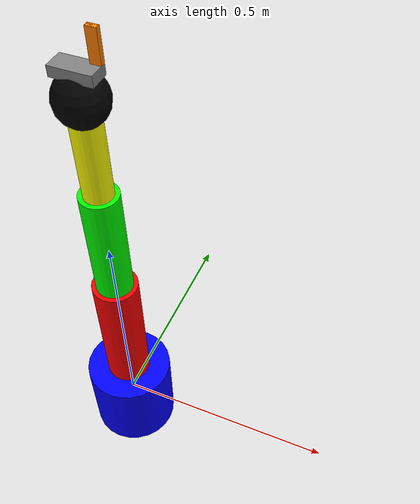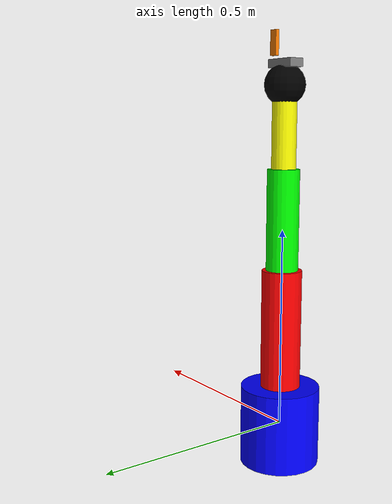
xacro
<?xml version="1.0"?>
<robot xmlns:xacro="http://www.ros.org/wiki/xacro" name="gesture_arm">

  <!-- Materials -->
  <xacro:macro name="material_color" params="name r g b a">
    <material name="${name}">
      <color rgba="${r} ${g} ${b} ${a}"/>
    </material>
  </xacro:macro>

  <!-- Define common properties -->
  <xacro:property name="pi" value="3.14159265359" />

  <!-- Link dimensions -->
  <xacro:property name="base_radius" value="0.1" />
  <xacro:property name="base_length" value="0.2" />
  <xacro:property name="link1_radius" value="0.05" />
  <xacro:property name="link1_length" value="0.3" />
  <xacro:property name="link2_radius" value="0.04" />
  <xacro:property name="link2_length" value="0.25" />
  <xacro:property name="link3_radius" value="0.03" />
  <xacro:property name="link3_length" value="0.2" />
  <xacro:property name="ee_radius" value="0.05" />

  <!-- Joint limits -->
  <xacro:property name="joint_effort" value="10.0" />
  <xacro:property name="joint_velocity" value="1.0" />
  <xacro:property name="joint_lower" value="-1.57" />
  <xacro:property name="joint_upper" value="1.57" />

  <!-- Gripper properties -->
  <xacro:property name="gripper_width" value="0.08" />
  <xacro:property name="gripper_height" value="0.04" />
  <xacro:property name="gripper_depth" value="0.02" />
  <xacro:property name="finger_width" value="0.02" />
  <xacro:property name="finger_height" value="0.01" />
  <xacro:property name="finger_length" value="0.06" />
  <xacro:property name="finger_effort" value="5.0" />
  <xacro:property name="finger_velocity" value="0.1" />
  <xacro:property name="finger_lower" value="-0.03" />
  <xacro:property name="finger_upper" value="0.0" />

  <!-- Cylindrical link macro -->
  <xacro:macro name="cylinder_link" params="name radius length color_name r g b a xyz rpy">
    <link name="${name}">
      <visual>
        <geometry>
          <cylinder radius="${radius}" length="${length}"/>
        </geometry>
        <origin xyz="${xyz}" rpy="${rpy}" />
        <xacro:material_color name="${color_name}" r="${r}" g="${g}" b="${b}" a="${a}" />
      </visual>
    </link>
  </xacro:macro>

  <!-- Revolute joint macro -->
  <xacro:macro name="revolute_joint" params="name parent child xyz rpy axis_xyz lower upper effort velocity">
    <joint name="${name}" type="revolute">
      <parent link="${parent}"/>
      <child link="${child}"/>
      <origin xyz="${xyz}" rpy="${rpy}"/>
      <axis xyz="${axis_xyz}"/>
      <limit lower="${lower}" upper="${upper}" effort="${effort}" velocity="${velocity}"/>
    </joint>
  </xacro:macro>

  <!-- Finger macro -->
  <xacro:macro name="gripper_finger" params="prefix rotation">
    <joint name="${prefix}_finger_joint" type="prismatic">
      <parent link="gripper_base"/>
      <child link="${prefix}_finger"/>
      <origin xyz="0.04 0.0 0.02" rpy="0 0 ${rotation}"/>
      <axis xyz="0 1 0"/>
      <limit lower="${finger_lower}" upper="${finger_upper}" effort="${finger_effort}" velocity="${finger_velocity}"/>
    </joint>

    <link name="${prefix}_finger">
      <visual>
        <geometry>
          <box size="${finger_width} ${finger_height} ${finger_length}"/>
        </geometry>
        <origin xyz="0 0 0.03" rpy="0 0 0"/>
        <xacro:material_color name="orange" r="1.0" g="0.5" b="0.0" a="1.0" />
      </visual>
    </link>
  </xacro:macro>

  <!-- Base link -->
  <xacro:cylinder_link name="base_link" radius="${base_radius}" length="${base_length}"
                      color_name="blue" r="0.0" g="0.0" b="1.0" a="1.0"
                      xyz="0 0 0" rpy="0 0 0" />

  <!-- Joint 1 -->
  <xacro:revolute_joint name="joint1" parent="base_link" child="link1"
                       xyz="0 0 0.1" rpy="0 0 0" axis_xyz="0 0 1"
                       lower="${joint_lower}" upper="${joint_upper}"
                       effort="${joint_effort}" velocity="${joint_velocity}" />

  <!-- Link 1 -->
  <xacro:cylinder_link name="link1" radius="${link1_radius}" length="${link1_length}"
                      color_name="red" r="1.0" g="0.0" b="0.0" a="1.0"
                      xyz="0 0 0.15" rpy="0 0 0" />

  <!-- Joint 2 -->
  <xacro:revolute_joint name="joint2" parent="link1" child="link2"
                       xyz="0 0 0.3" rpy="0 0 0" axis_xyz="0 1 0"
                       lower="${joint_lower}" upper="${joint_upper}"
                       effort="${joint_effort}" velocity="${joint_velocity}" />

  <!-- Link 2 -->
  <xacro:cylinder_link name="link2" radius="${link2_radius}" length="${link2_length}"
                      color_name="green" r="0.0" g="1.0" b="0.0" a="1.0"
                      xyz="0 0 0.125" rpy="0 0 0" />

  <!-- Joint 3 -->
  <xacro:revolute_joint name="joint3" parent="link2" child="link3"
                       xyz="0 0 0.25" rpy="0 0 0" axis_xyz="0 1 0"
                       lower="${joint_lower}" upper="${joint_upper}"
                       effort="${joint_effort}" velocity="${joint_velocity}" />

  <!-- Link 3 -->
  <xacro:cylinder_link name="link3" radius="${link3_radius}" length="${link3_length}"
                      color_name="yellow" r="1.0" g="1.0" b="0.0" a="1.0"
                      xyz="0 0 0.1" rpy="0 0 0" />

  <!-- Joint 4 -->
  <xacro:revolute_joint name="joint4" parent="link3" child="end_effector"
                       xyz="0 0 0.2" rpy="0 0 0" axis_xyz="0 1 0"
                       lower="${joint_lower}" upper="${joint_upper}"
                       effort="${joint_effort}" velocity="${joint_velocity}" />

  <!-- End Effector -->
  <link name="end_effector">
    <visual>
      <geometry>
        <sphere radius="${ee_radius}"/>
      </geometry>
      <origin xyz="0 0 0" rpy="0 0 0"/>
      <xacro:material_color name="black" r="0.0" g="0.0" b="0.0" a="1.0" />
    </visual>
  </link>

  <!-- Gripper joint -->
  <joint name="gripper_joint" type="fixed">
    <parent link="end_effector"/>
    <child link="gripper_base"/>
    <origin xyz="0 0 0.05" rpy="0 0 0"/>
  </joint>

  <!-- Gripper base -->
  <link name="gripper_base">
    <visual>
      <geometry>
        <box size="${gripper_width} ${gripper_height} ${gripper_depth}"/>
      </geometry>
      <origin xyz="0 0 0" rpy="0 0 0"/>
      <xacro:material_color name="gray" r="0.5" g="0.5" b="0.5" a="1.0" />
    </visual>
  </link>

  <!-- Gripper fingers -->
  <xacro:gripper_finger prefix="left" rotation="0" />
  <xacro:gripper_finger prefix="right" rotation="${pi}" />

</robot>
